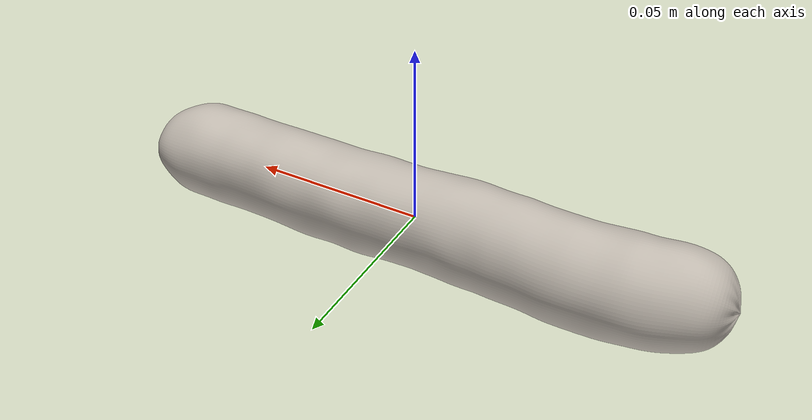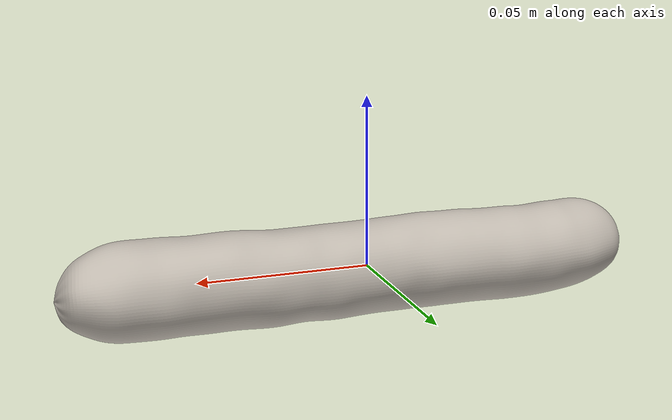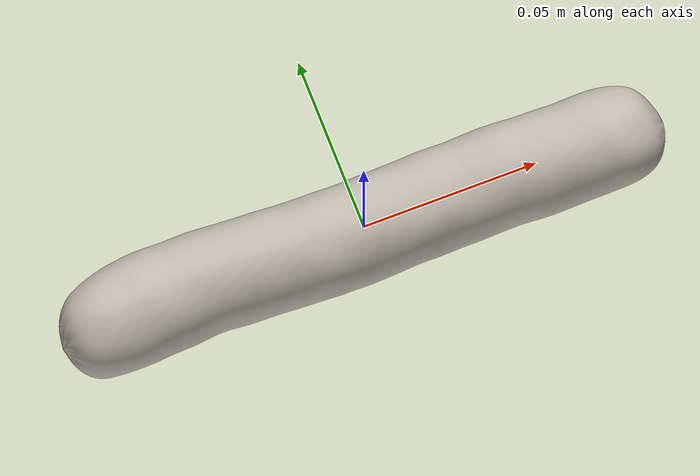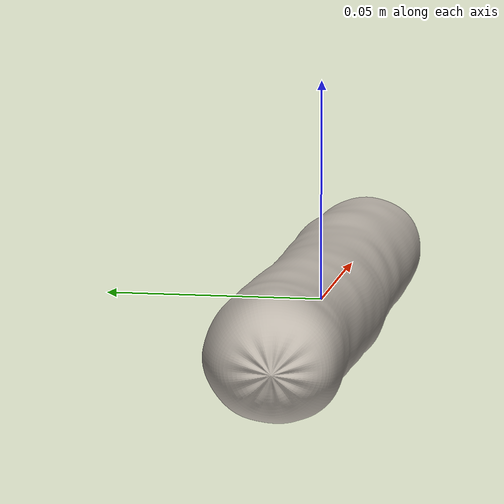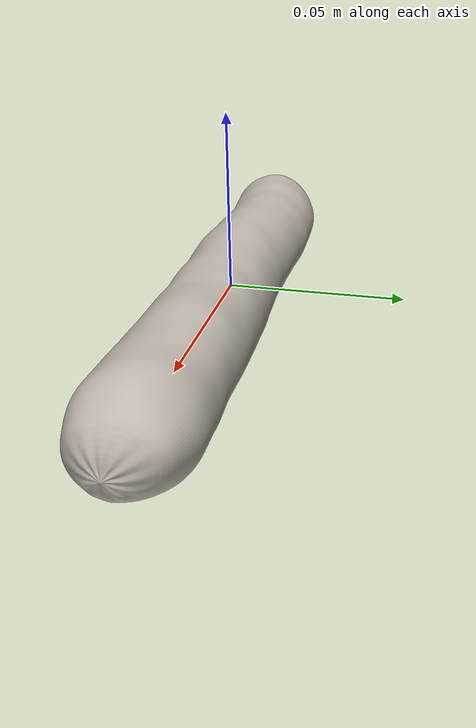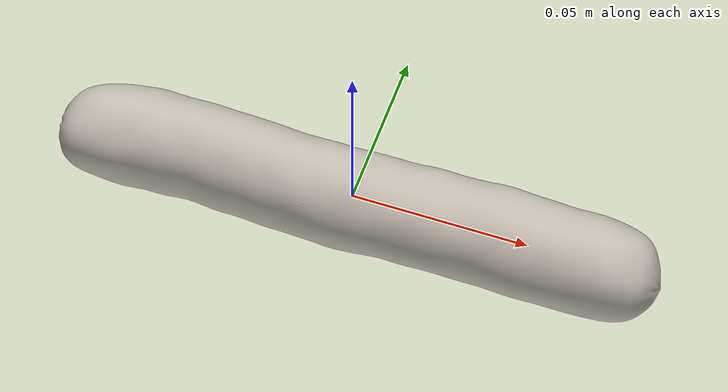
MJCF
<?xml version="1.0" ?>
<mujoco model="short_sausage">
	<compiler meshdir="short_sausage/meshes" texturedir="short_sausage/textures" angle="radian" autolimits="true" balanceinertia="true" boundmass="0.000001" boundinertia="0.000001"/>
	<default>
		<default class="visual">
			<geom contype="0" conaffinity="0"/>
		</default>
		<default class="collision">
			<geom rgba="1.0 0.0 0.0 0.0"/>
		</default>
	</default>
	<asset>
		<mesh name="SausageShort" file="obj/SausageShort.obj" scale="1.0 1.0 1.0"/>
		<mesh name="SausageShort_001" file="stl/SausageShort_001.stl" scale="1.0 1.0 1.0"/>
		<material name="M_SausageShort" texture="T_SausageShort"/>
		<texture name="T_SausageShort" type="2d" file="T_SausageShort.png"/>
	</asset>
	<worldbody>
		<body name="short_sausage" pos="0.0 0.0 0.0" quat="1.0 0.0 0.0 0.0">
			<inertial mass="0.1019214615225792" pos="-0.001037427457049489 -0.00032028325949795544 -0.00020861737721133977" quat="0.02437715418636799 0.9997003078460693 0.000674586626701057 -0.002155631547793746" diaginertia="9.97260030999314e-06 0.00022951721621211618 0.00022983380767982453"/>
			<geom name="SausageShort" type="mesh" pos="0.0 0.0 0.0" quat="1.0 0.0 0.0 0.0" mesh="SausageShort" material="M_SausageShort" class="visual"/>
			<geom name="SausageShort_001" type="mesh" pos="0.0 0.0 0.0" quat="1.0 0.0 0.0 0.0" mesh="SausageShort_001" class="collision"/>
		</body>
	</worldbody>
	<equality/>
</mujoco>
